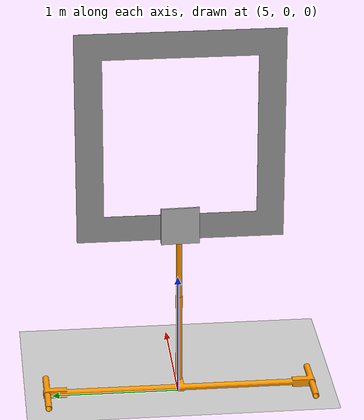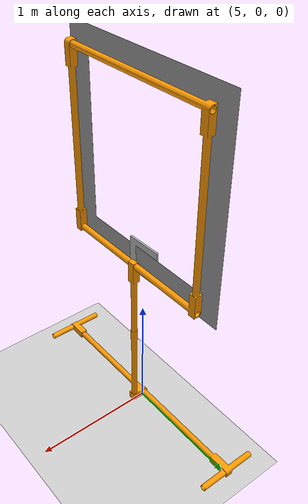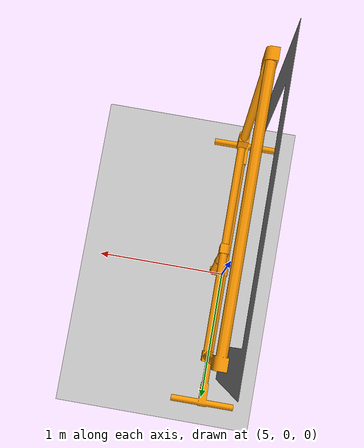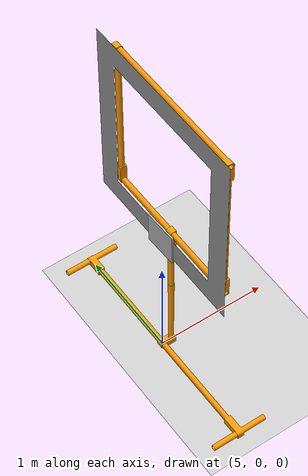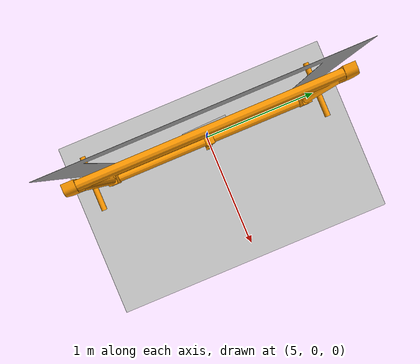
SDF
<sdf version="1.7">
 <world name="default">
  <model name="ground_plane">
   <static>1</static>
   <link name="link">
    <collision name="collision">
     <geometry><plane><normal>0 0 1</normal><size>100 100</size></plane></geometry>
     <surface>
      <contact><collide_bitmask>65535</collide_bitmask></contact>
      <friction><ode><mu>100</mu><mu2>50</mu2></ode></friction>
     </surface>
    </collision>
    <visual name="visual">
     <cast_shadows>0</cast_shadows>
     <geometry><plane><normal>0 0 1</normal><size>100 100</size></plane></geometry>
     <material>
      <script><uri>file://media/materials/scripts/gazebo.material</uri><name>Gazebo/Grey</name></script>
     </material>
    </visual>
   </link>
  </model>
  <model name="Aruco_gate_1">
   <link name="aruco">
    <pose>0.135 0 1.45017 0 -0 1.6</pose>
    <collision name="collision"><geometry><box><size>0.3 0.015 0.3</size></box></geometry></collision>
    <visual name="visual">
     <pose>0 0 0 0 1.57 0</pose>
     <geometry><box><size>0.3 0.015 0.3</size></box></geometry>
     <material>
      <script>
       <uri>model://aruco/materials/scripts</uri>
       <uri>model://aruco/materials/textures</uri>
       <name>aruco_1/Diffuse</name>
      </script>
     </material>
    </visual>
   </link>
   <link name="link_0">
    <pose>-0.126667 1.11221 0.000173 1.57 -0 0</pose>
    <inertial>
     <mass>1</mass>
     <inertia>
      <ixx>0.166667</ixx>
      <ixy>0</ixy>
      <ixz>0</ixz>
      <iyy>0.166667</iyy>
      <iyz>0</iyz>
      <izz>0.166667</izz>
     </inertia>
    </inertial>
    <visual name="visual">
     <geometry><mesh><uri>model://aruco_gate_1/meshes/base.stl</uri><scale>1 1 1</scale></mesh></geometry>
     <material>
      <lighting>1</lighting>
      <script><uri>file://media/materials/scripts/gazebo.material</uri><name>Gazebo/Grey</name></script>
      <ambient>1 0.6 0 1</ambient>
      <diffuse>1 0.6 0 1</diffuse>
      <specular>0.01 0.01 0.01 1</specular>
      <emissive>0 0 0 1</emissive>
      <shader type="vertex"><normal_map>__default__</normal_map></shader>
     </material>
    </visual>
    <collision name="collision">
     <geometry><mesh><uri>model://aruco_gate_1/meshes/base.stl</uri></mesh></geometry>
     <surface>
      <friction>
       <ode><mu>1</mu><mu2>1</mu2><fdir1>0 0 0</fdir1><slip1>0</slip1><slip2>0</slip2></ode>
       <torsional>
        <coefficient>1</coefficient>
        <patch_radius>0</patch_radius>
        <surface_radius>0</surface_radius>
        <use_patch_radius>1</use_patch_radius>
        <ode><slip>0</slip></ode>
       </torsional>
      </friction>
      <bounce><restitution_coefficient>0</restitution_coefficient><threshold>1e+06</threshold></bounce>
      <contact>
       <collide_without_contact>0</collide_without_contact>
       <collide_without_contact_bitmask>1</collide_without_contact_bitmask>
       <collide_bitmask>1</collide_bitmask>
       <ode>
        <soft_cfm>0</soft_cfm>
        <soft_erp>0.2</soft_erp>
        <kp>1e+13</kp>
        <kd>1</kd>
        <max_vel>0.01</max_vel>
        <min_depth>0</min_depth>
       </ode>
       <bullet>
        <split_impulse>1</split_impulse>
        <split_impulse_penetration_threshold>-0.01</split_impulse_penetration_threshold>
        <soft_cfm>0</soft_cfm>
        <soft_erp>0.2</soft_erp>
        <kp>1e+13</kp>
        <kd>1</kd>
       </bullet>
      </contact>
     </surface>
    </collision>
   </link>
   <link name="link_1">
    <pose>0.003333 -0.7 1.40017 0 -0 0</pose>
    <inertial>
     <mass>1</mass>
     <inertia>
      <ixx>0.166667</ixx>
      <ixy>0</ixy>
      <ixz>0</ixz>
      <iyy>0.166667</iyy>
      <iyz>0</iyz>
      <izz>0.166667</izz>
     </inertia>
    </inertial>
    <visual name="visual">
     <geometry><mesh><uri>model://aruco_gate_1/meshes/hoop.stl</uri><scale>1 1 1</scale></mesh></geometry>
     <material>
      <lighting>1</lighting>
      <script><uri>file://media/materials/scripts/gazebo.material</uri><name>Gazebo/Grey</name></script>
      <ambient>1 0.6 0 1</ambient>
      <diffuse>1 0.6 0 1</diffuse>
      <specular>0.01 0.01 0.01 1</specular>
      <emissive>0 0 0 1</emissive>
      <shader type="vertex"><normal_map>__default__</normal_map></shader>
     </material>
    </visual>
    <collision name="collision">
     <geometry><mesh><uri>model://aruco_gate_1/meshes/hoop.stl</uri></mesh></geometry>
     <surface>
      <friction>
       <ode><mu>1</mu><mu2>1</mu2><fdir1>0 0 0</fdir1><slip1>0</slip1><slip2>0</slip2></ode>
       <torsional>
        <coefficient>1</coefficient>
        <patch_radius>0</patch_radius>
        <surface_radius>0</surface_radius>
        <use_patch_radius>1</use_patch_radius>
        <ode><slip>0</slip></ode>
       </torsional>
      </friction>
      <bounce><restitution_coefficient>0</restitution_coefficient><threshold>1e+06</threshold></bounce>
      <contact>
       <collide_without_contact>0</collide_without_contact>
       <collide_without_contact_bitmask>1</collide_without_contact_bitmask>
       <collide_bitmask>1</collide_bitmask>
       <ode>
        <soft_cfm>0</soft_cfm>
        <soft_erp>0.2</soft_erp>
        <kp>1e+13</kp>
        <kd>1</kd>
        <max_vel>0.01</max_vel>
        <min_depth>0</min_depth>
       </ode>
       <bullet>
        <split_impulse>1</split_impulse>
        <split_impulse_penetration_threshold>-0.01</split_impulse_penetration_threshold>
        <soft_cfm>0</soft_cfm>
        <soft_erp>0.2</soft_erp>
        <kp>1e+13</kp>
        <kd>1</kd>
       </bullet>
      </contact>
     </surface>
    </collision>
   </link>
   <link name="link_2">
    <pose>0.123333 -0.797794 3.62017 0 1.57 0</pose>
    <inertial>
     <mass>1</mass>
     <inertia>
      <ixx>0.166667</ixx>
      <ixy>0</ixy>
      <ixz>0</ixz>
      <iyy>0.166667</iyy>
      <iyz>0</iyz>
      <izz>0.166667</izz>
     </inertia>
    </inertial>
    <visual name="visual">
     <geometry><mesh><uri>model://aruco_gate_1/meshes/background.stl</uri><scale>1 1 1</scale></mesh></geometry>
     <material>
      <lighting>1</lighting>
      <script><uri>file://media/materials/scripts/gazebo.material</uri><name>Gazebo/Grey</name></script>
      <ambient>0.9 0.9 0.9 1</ambient>
      <diffuse>0.9 0.9 0.9 1</diffuse>
      <specular>0.01 0.01 0.01 1</specular>
      <emissive>0 0 0 1</emissive>
      <shader type="vertex"><normal_map>__default__</normal_map></shader>
     </material>
    </visual>
    <collision name="collision">
     <geometry><mesh><uri>model://aruco_gate_1/meshes/background.stl</uri></mesh></geometry>
     <surface>
      <friction>
       <ode><mu>1</mu><mu2>1</mu2><fdir1>0 0 0</fdir1><slip1>0</slip1><slip2>0</slip2></ode>
       <torsional>
        <coefficient>1</coefficient>
        <patch_radius>0</patch_radius>
        <surface_radius>0</surface_radius>
        <use_patch_radius>1</use_patch_radius>
        <ode><slip>0</slip></ode>
       </torsional>
      </friction>
      <bounce><restitution_coefficient>0</restitution_coefficient><threshold>1e+06</threshold></bounce>
      <contact>
       <collide_without_contact>0</collide_without_contact>
       <collide_without_contact_bitmask>1</collide_without_contact_bitmask>
       <collide_bitmask>1</collide_bitmask>
       <ode>
        <soft_cfm>0</soft_cfm>
        <soft_erp>0.2</soft_erp>
        <kp>1e+13</kp>
        <kd>1</kd>
        <max_vel>0.01</max_vel>
        <min_depth>0</min_depth>
       </ode>
       <bullet>
        <split_impulse>1</split_impulse>
        <split_impulse_penetration_threshold>-0.01</split_impulse_penetration_threshold>
        <soft_cfm>0</soft_cfm>
        <soft_erp>0.2</soft_erp>
        <kp>1e+13</kp>
        <kd>1</kd>
       </bullet>
      </contact>
     </surface>
    </collision>
   </link>
   <static>1</static>
   <pose>5.11537 -0.014281 0 0 0 -3.14006</pose>
  </model>
 </world>
</sdf>
